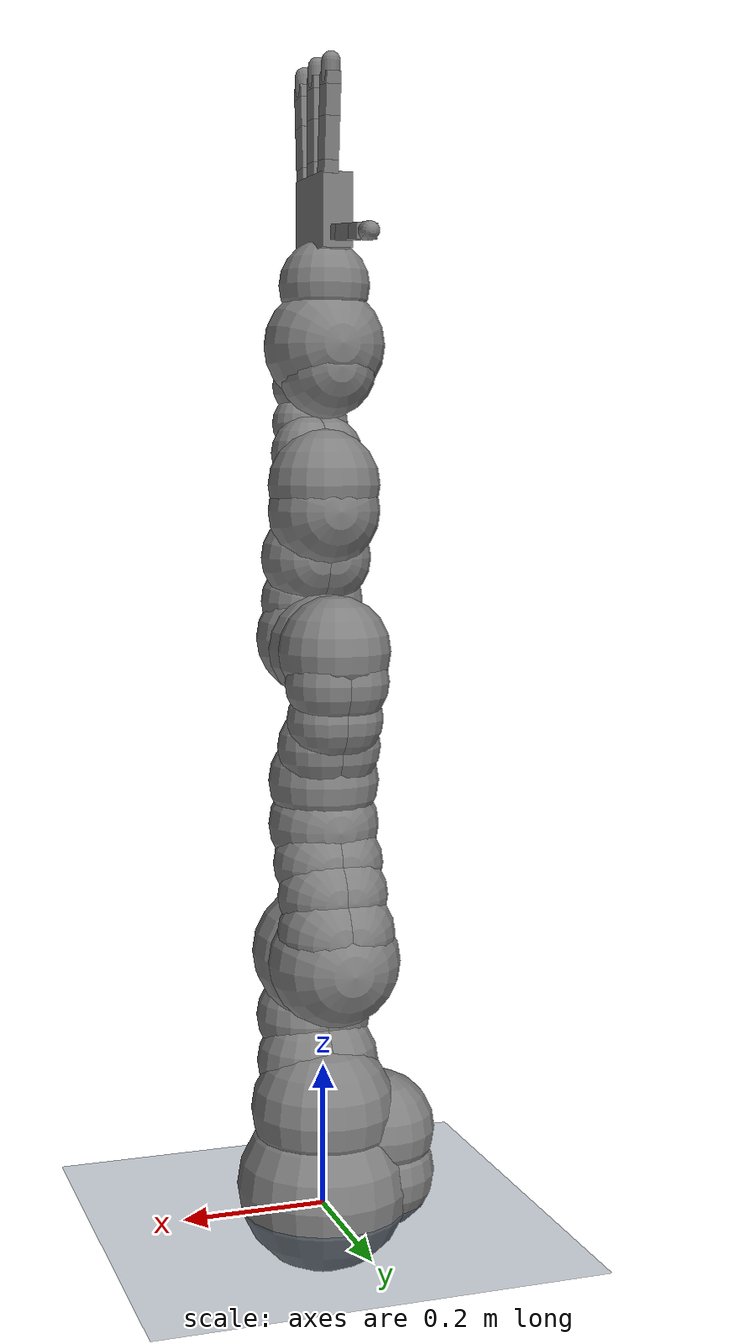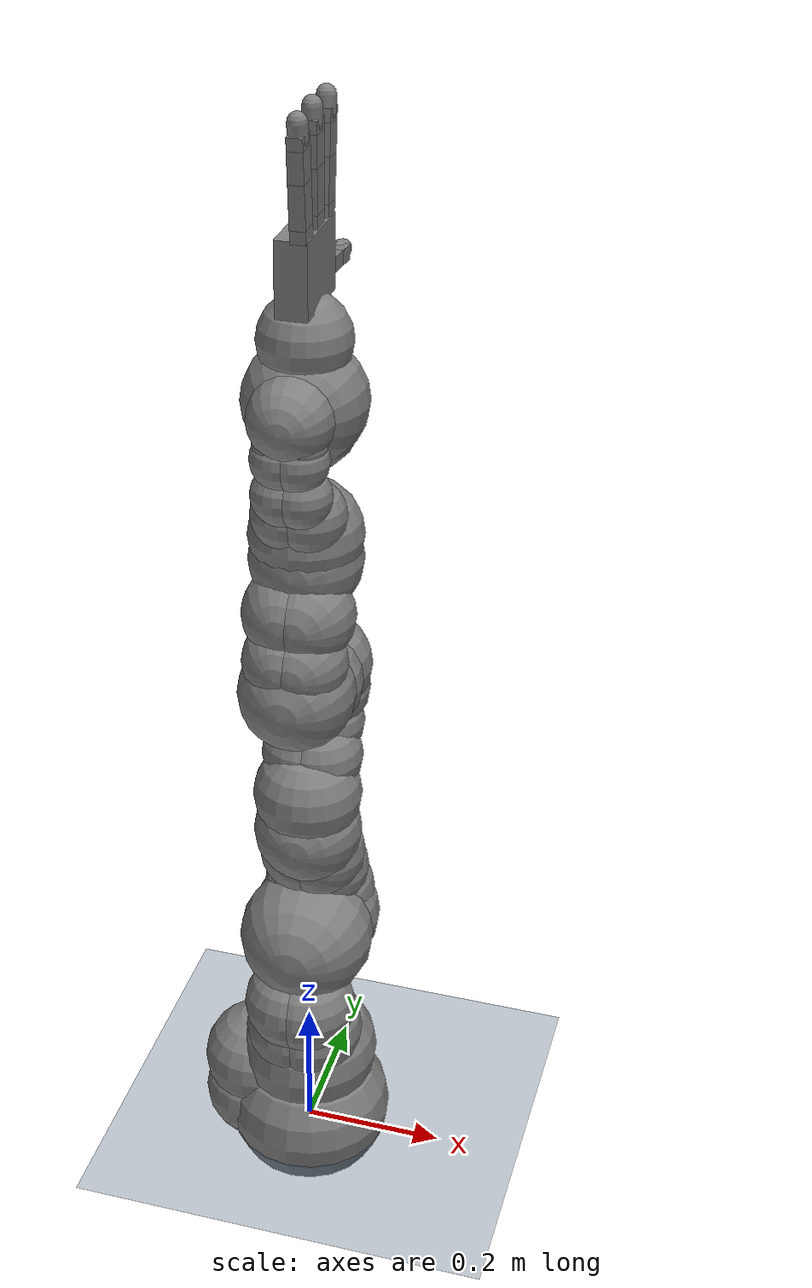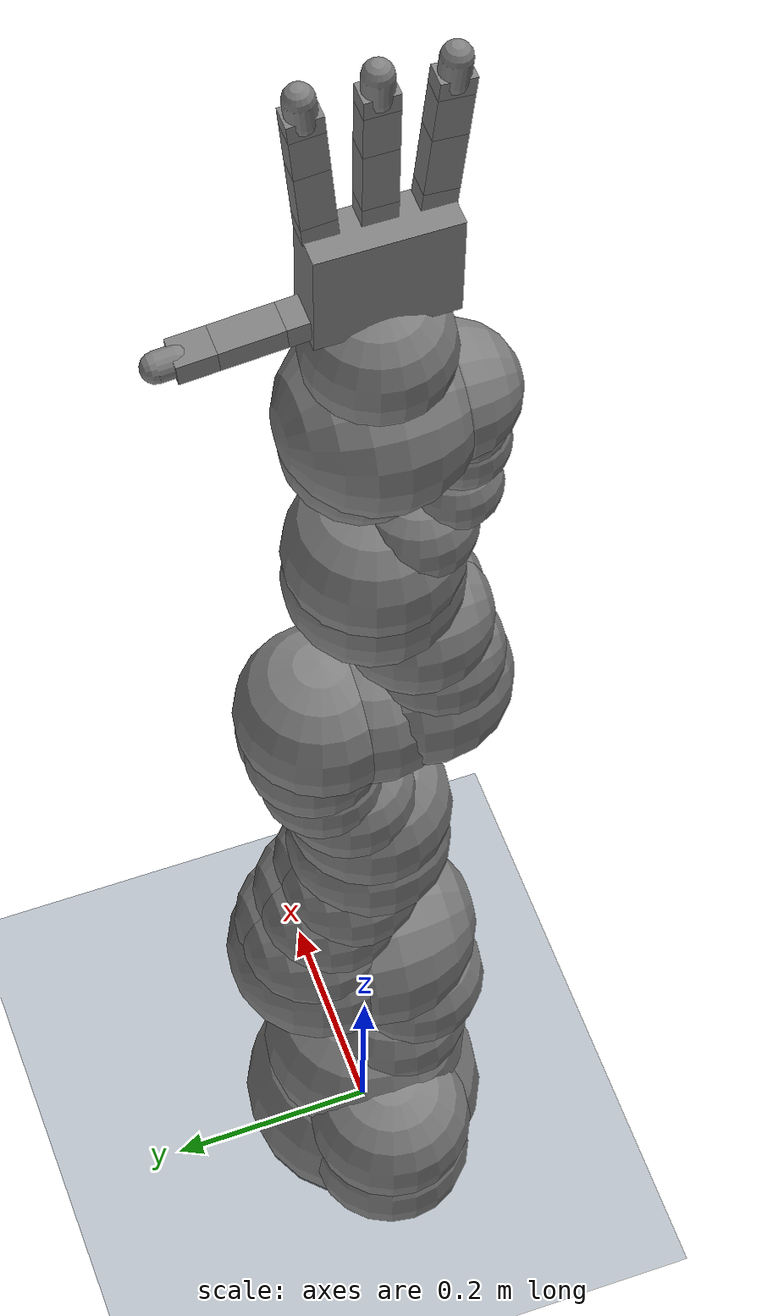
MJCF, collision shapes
<mujoco model="iiwa14_allegro_right_scene">
  <compiler angle="radian" autolimits="true"/>

  <option integrator="implicitfast" cone="elliptic" impratio="10"/>

  <statistic center="0.2 0 0.2" extent="1.0"/>

  <visual>
    <headlight diffuse="0.6 0.6 0.6" ambient="0.3 0.3 0.3" specular="0 0 0"/>
    <rgba haze="0.15 0.25 0.35 1"/>
    <global azimuth="-120" elevation="-20"/>
  </visual>

  <asset>
    <texture type="skybox" builtin="gradient" rgb1="0.3 0.5 0.7" rgb2="0 0 0" width="512" height="3072"/>
    <texture type="2d" name="groundplane" builtin="checker" mark="edge" rgb1="0.2 0.3 0.4" rgb2="0.1 0.2 0.3"
      markrgb="0.8 0.8 0.8" width="300" height="300"/>
    <material name="groundplane" texture="groundplane" texuniform="true" texrepeat="5 5" reflectance="0.2"/>

    <material class="iiwa" name="gray" rgba="0.4 0.4 0.4 1"/>
    <material class="iiwa" name="light_gray" rgba="0.6 0.6 0.6 1"/>
    <material class="iiwa" name="black" rgba="0 0 0 1"/>
    <material class="iiwa" name="orange" rgba="1 0.423529 0.0392157 1"/>

    <material name="allegro_black" rgba="0.2 0.2 0.2 1"/>
    <material name="allegro_white" rgba="0.9 0.9 0.9 1"/>

    <mesh file="kuka_iiwa_14/assets/link_0.obj"/>
    <mesh file="kuka_iiwa_14/assets/link_1.obj"/>
    <mesh file="kuka_iiwa_14/assets/link_2_orange.obj"/>
    <mesh file="kuka_iiwa_14/assets/link_2_grey.obj"/>
    <mesh file="kuka_iiwa_14/assets/link_3.obj"/>
    <mesh file="kuka_iiwa_14/assets/band.obj"/>
    <mesh file="kuka_iiwa_14/assets/kuka.obj"/>
    <mesh file="kuka_iiwa_14/assets/link_4_orange.obj"/>
    <mesh file="kuka_iiwa_14/assets/link_4_grey.obj"/>
    <mesh file="kuka_iiwa_14/assets/link_5.obj"/>
    <mesh file="kuka_iiwa_14/assets/link_6_orange.obj"/>
    <mesh file="kuka_iiwa_14/assets/link_6_grey.obj"/>
    <mesh file="kuka_iiwa_14/assets/link_7.obj"/>

    <mesh file="wonik_allegro/assets/base_link.stl"/>
    <mesh file="wonik_allegro/assets/link_0.0.stl"/>
    <mesh file="wonik_allegro/assets/link_1.0.stl"/>
    <mesh file="wonik_allegro/assets/link_2.0.stl"/>
    <mesh file="wonik_allegro/assets/link_3.0.stl"/>
    <mesh file="wonik_allegro/assets/link_3.0_tip.stl"/>
    <mesh file="wonik_allegro/assets/link_12.0_right.stl"/>
    <mesh file="wonik_allegro/assets/link_13.0.stl"/>
    <mesh file="wonik_allegro/assets/link_14.0.stl"/>
    <mesh file="wonik_allegro/assets/link_15.0.stl"/>
    <mesh file="wonik_allegro/assets/link_15.0_tip.stl"/>
  </asset>

  <default>
    <default class="iiwa">
      <material specular="0.5" shininess="0.25"/>
      <joint axis="0 0 1"/>
      <general gaintype="fixed" biastype="affine" gainprm="2000" biasprm="0 -2000 -200"/>
      <default class="joint1">
        <joint range="-2.96706 2.96706"/>
        <general ctrlrange="-2.96706 2.96706"/>
        <default class="joint2">
          <joint range="-2.0944 2.0944"/>
          <general ctrlrange="-2.0944 2.0944"/>
        </default>
      </default>
      <default class="joint3">
        <joint range="-3.05433 3.05433"/>
        <general ctrlrange="-3.05433 3.05433"/>
      </default>
      <default class="visual">
        <geom type="mesh" contype="0" conaffinity="0" group="2" material="gray"/>
      </default>
      <default class="collision">
        <geom group="3"/>
      </default>
      <site size="0.001" rgba="1 0 0 1" group="4"/>
    </default>

    <default class="allegro_right">
      <joint axis="0 1 0" damping=".1"/>
      <position kp="1"/>
      <geom density="800"/>

      <default class="allegro_visual">
        <geom type="mesh" contype="0" conaffinity="0" group="2" material="allegro_black"/>
        <default class="palm_visual">
          <geom mesh="base_link"/>
        </default>
        <default class="base_visual">
          <geom mesh="link_0.0"/>
        </default>
        <default class="proximal_visual">
          <geom mesh="link_1.0"/>
        </default>
        <default class="medial_visual">
          <geom mesh="link_2.0"/>
        </default>
        <default class="distal_visual">
          <geom mesh="link_3.0"/>
        </default>
        <default class="fingertip_visual">
          <geom pos="0 0 0.0267" material="allegro_white" mesh="link_3.0_tip"/>
        </default>
        <default class="thumbtip_visual">
          <geom pos="0 0 0.0423" material="allegro_white" mesh="link_15.0_tip"/>
        </default>
      </default>

      <default class="allegro_collision">
        <geom group="3" type="box" mass="0"/>
        <default class="palm_collision">
          <geom size="0.0204 0.0565 0.0475" pos="-0.0093 0 -0.0475"/>
        </default>
        <default class="base_collision">
          <geom size="0.0098 0.01375 0.0082" pos="0 0 0.0082"/>
          <default class="thumb_base_collision">
            <geom size="0.0179 0.017 0.02275" pos="-0.0179 0.009 0.0145"/>
          </default>
        </default>
        <default class="proximal_collision">
          <geom size="0.0098 0.01375 0.027" pos="0 0 0.027"/>
          <default class="thumb_proximal_collision">
            <geom size="0.0098 0.01375 0.00885" pos="0 0 0.00885"/>
          </default>
        </default>
        <default class="medial_collision">
          <geom size="0.0098 0.01375 0.0192" pos="0 0 0.0192"/>
          <default class="thumb_medial_collision">
            <geom size="0.0098 0.01375 0.0257" pos="0 0 0.0257"/>
          </default>
        </default>
        <default class="distal_collision">
          <geom size="0.0098 0.01375 0.008" pos="0 0 0.008"/>
          <default class="thumb_distal_collision">
            <geom size="0.0098 0.01375 0.0157" pos="0 0 0.0157"/>
          </default>
        </default>
        <default class="fingertip_collision">
          <geom type="capsule" size="0.012 0.01" pos="0 0 0.019"/>
          <default class="thumbtip_collision">
            <geom type="capsule" size="0.012 0.008" pos="0 0 0.035"/>
          </default>
        </default>
      </default>

      <default class="base">
        <joint axis="0 0 1" range="-0.47 0.47"/>
        <position ctrlrange="-0.47 0.47"/>
      </default>
      <default class="proximal">
        <joint range="-0.196 1.61"/>
        <position ctrlrange="-0.196 1.61"/>
      </default>
      <default class="medial">
        <joint range="-0.174 1.709"/>
        <position ctrlrange="-0.174 1.709"/>
      </default>
      <default class="distal">
        <joint range="-0.227 1.618"/>
        <position ctrlrange="-0.227 1.618"/>
      </default>
      <default class="thumb_base">
        <joint axis="-1 0 0" range="0.263 1.396"/>
        <position ctrlrange="0.263 1.396"/>
      </default>
      <default class="thumb_proximal">
        <joint axis="0 0 1" range="-0.105 1.163"/>
        <position ctrlrange="-0.105 1.163"/>
      </default>
      <default class="thumb_medial">
        <joint range="-0.189 1.644"/>
        <position ctrlrange="-0.189 1.644"/>
      </default>
      <default class="thumb_distal">
        <joint range="-0.162 1.719"/>
        <position ctrlrange="-0.162 1.719"/>
      </default>
    </default>
  </default>

  <worldbody>
    <light pos="0 0 1.5" dir="0 0 -1" directional="true"/>
    <geom name="floor" size="0 0 0.05" type="plane" material="groundplane"/>

    <light name="top" pos="0 0 2" mode="trackcom"/>
    <body name="base" childclass="iiwa">
      <inertial mass="5" pos="-0.1 0 0.07" diaginertia="0.05 0.06 0.03"/>
      <geom class="visual" mesh="link_0"/>
      <geom class="collision" size="0.12" pos="0 0 0.03"/>
      <geom class="collision" size="0.08" pos="-0.08 0 0.103"/>
      <geom class="collision" size="0.08" pos="-0.08 0 0.04"/>
      <geom class="collision" size="0.1" pos="0 0 0.14"/>
      <body name="link1" pos="0 0 0.1575">
        <inertial mass="5.76" pos="0 -0.03 0.12" diaginertia="0.0333 0.033 0.0123"/>
        <joint name="joint1" class="joint1"/>
        <geom class="visual" mesh="link_1"/>
        <geom class="collision" size="0.08" pos="0 0 -0.0005"/>
        <geom class="collision" size="0.075" pos="0.01 -0.025 0.0425"/>
        <geom class="collision" size="0.075" pos="-0.01 -0.025 0.0425"/>
        <geom class="collision" size="0.07" pos="0.01 -0.045 0.1025"/>
        <geom class="collision" size="0.07" pos="-0.01 -0.045 0.1025"/>
        <body name="link2" pos="0 0 0.2025" quat="0 0 1 1">
          <inertial mass="6.35" pos="0.0003 0.059 0.042" diaginertia="0.0305 0.0304 0.011" quat="0 0 1 1"/>
          <joint name="joint2" class="joint2"/>
          <geom class="visual" material="orange" mesh="link_2_orange"/>
          <geom class="visual" mesh="link_2_grey"/>
          <geom class="collision" size="0.095" pos="0 0 -0.01"/>
          <geom class="collision" size="0.09" pos="0 0 0.045"/>
          <geom class="collision" size="0.07" pos="-0.01 0.04 0.054"/>
          <geom class="collision" size="0.065" pos="-0.01 0.09 0.04"/>
          <geom class="collision" size="0.065" pos="-0.01 0.13 0.02"/>
          <geom class="collision" size="0.07" pos="0.01 0.04 0.054"/>
          <geom class="collision" size="0.065" pos="0.01 0.09 0.04"/>
          <geom class="collision" size="0.065" pos="0.01 0.13 0.02"/>
          <geom class="collision" size="0.075" pos="0 0.18 0"/>
          <body name="link3" pos="0 0.2045 0" quat="0 0 1 1">
            <inertial mass="3.5" pos="0 0.03 0.13" diaginertia="0.025 0.0238 0.0076"/>
            <joint name="joint3" class="joint1"/>
            <geom class="visual" mesh="link_3"/>
            <geom class="visual" material="light_gray" mesh="band"/>
            <geom class="visual" material="black" mesh="kuka"/>
            <geom class="collision" size="0.075" pos="0 0 0.0355"/>
            <geom class="collision" size="0.06" pos="0.01 0.023 0.0855"/>
            <geom class="collision" size="0.055" pos="0.01 0.048 0.1255"/>
            <geom class="collision" size="0.06" pos="0.01 0.056 0.1755"/>
            <geom class="collision" size="0.06" pos="-0.01 0.023 0.0855"/>
            <geom class="collision" size="0.055" pos="-0.01 0.048 0.1255"/>
            <geom class="collision" size="0.06" pos="-0.01 0.056 0.1755"/>
            <geom class="collision" size="0.075" pos="0 0.045 0.2155"/>
            <geom class="collision" size="0.075" pos="0 0 0.2155"/>
            <body name="link4" pos="0 0 0.2155" quat="1 1 0 0">
              <inertial mass="3.5" pos="0 0.067 0.034" diaginertia="0.017 0.0164 0.006" quat="1 1 0 0"/>
              <joint name="joint4" class="joint2"/>
              <geom class="visual" material="orange" mesh="link_4_orange"/>
              <geom class="visual" mesh="link_4_grey"/>
              <geom class="collision" size="0.078" pos="0 0.01 0.046"/>
              <geom class="collision" size="0.06" pos="0.01 0.06 0.052"/>
              <geom class="collision" size="0.065" pos="0.01 0.12 0.034"/>
              <geom class="collision" size="0.06" pos="-0.01 0.06 0.052"/>
              <geom class="collision" size="0.065" pos="-0.01 0.12 0.034"/>
              <geom class="collision" size="0.075" pos="0 0.184 0"/>
              <body name="link5" pos="0 0.1845 0" quat="0 0 1 1">
                <inertial mass="3.5" pos="0.0001 0.021 0.076" diaginertia="0.01 0.0087 0.00449"/>
                <joint name="joint5" class="joint1"/>
                <geom class="visual" mesh="link_5"/>
                <geom class="visual" material="light_gray" mesh="band"/>
                <geom class="visual" material="black" mesh="kuka"/>
                <geom class="collision" size="0.075" pos="0 0 0.0335"/>
                <geom class="collision" size="0.05" pos="-0.012 0.031 0.0755"/>
                <geom class="collision" size="0.05" pos="0.012 0.031 0.0755"/>
                <geom class="collision" size="0.04" pos="-0.012 0.06 0.1155"/>
                <geom class="collision" size="0.04" pos="0.012 0.06 0.1155"/>
                <geom class="collision" size="0.04" pos="-0.01 0.065 0.1655"/>
                <geom class="collision" size="0.04" pos="0.01 0.065 0.1655"/>
                <geom class="collision" size="0.035" pos="-0.012 0.065 0.1855"/>
                <geom class="collision" size="0.035" pos="0.012 0.065 0.1855"/>
                <body name="link6" pos="0 0 0.2155" quat="1 1 0 0">
                  <inertial mass="1.8" pos="0 0.0006 0.0004" diaginertia="0.0049 0.0047 0.0036" quat="1 1 0 0"/>
                  <joint name="joint6" class="joint2"/>
                  <geom class="visual" material="orange" mesh="link_6_orange"/>
                  <geom class="visual" mesh="link_6_grey"/>
                  <geom class="collision" size="0.055" pos="0 0 -0.059"/>
                  <geom class="collision" size="0.065" pos="0 -0.03 0.011"/>
                  <geom class="collision" size="0.08"/>
                  <body name="link7" pos="0 0.077 0" quat="0 0 1 1">
                    <inertial mass="1.2" pos="0 0 0.02" diaginertia="0.001 0.001 0.001"/>
                    <joint name="joint7" class="joint3"/>
                    <geom class="visual" mesh="link_7"/>
                    <geom class="collision" size="0.06" pos="0 0 0.001"/>
                    <site pos="0 0 0.045" name="attachment_site"/>
                    <body name="allegro_mount" pos="0.01 0 0.14" quat="0 1 0 1">
                      <body name="palm" quat="0 1 0 1" childclass="allegro_right">
                        <geom class="palm_visual" mesh="base_link"/>
                        <geom class="palm_collision"/>
                        <body name="ff_base" pos="0 0.0435 -0.001542" quat="0.999048 -0.0436194 0 0">
                          <joint name="ffj0" class="base"/>
                          <geom class="base_visual"/>
                          <geom class="base_collision"/>
                          <body name="ff_proximal" pos="0 0 0.0164">
                            <joint name="ffj1" class="proximal"/>
                            <geom class="proximal_visual"/>
                            <geom class="proximal_collision"/>
                            <body name="ff_medial" pos="0 0 0.054">
                              <joint name="ffj2" class="medial"/>
                              <geom class="medial_visual"/>
                              <geom class="medial_collision"/>
                              <body name="ff_distal" pos="0 0 0.0384">
                                <joint name="ffj3" class="distal"/>
                                <geom class="distal_visual"/>
                                <geom class="distal_collision"/>
                                <body name="ff_tip">
                                  <geom class="fingertip_visual"/>
                                  <geom class="fingertip_collision"/>
                                </body>
                              </body>
                            </body>
                          </body>
                        </body>
                        <body name="mf_base" pos="0 0 0.0007">
                          <joint name="mfj0" class="base"/>
                          <geom class="base_visual"/>
                          <geom class="base_collision"/>
                          <body name="mf_proximal" pos="0 0 0.0164">
                            <joint name="mfj1" class="proximal"/>
                            <geom class="proximal_visual"/>
                            <geom class="proximal_collision"/>
                            <body name="mf_medial" pos="0 0 0.054">
                              <joint name="mfj2" class="medial"/>
                              <geom class="medial_visual"/>
                              <geom class="medial_collision"/>
                              <body name="mf_distal" pos="0 0 0.0384">
                                <joint name="mfj3" class="distal"/>
                                <geom class="distal_visual"/>
                                <geom class="distal_collision"/>
                                <body name="mf_tip">
                                  <geom class="fingertip_visual"/>
                                  <geom class="fingertip_collision"/>
                                </body>
                              </body>
                            </body>
                          </body>
                        </body>
                        <body name="rf_base" pos="0 -0.0435 -0.001542" quat="0.999048 0.0436194 0 0">
                          <joint name="rfj0" class="base"/>
                          <geom class="base_visual"/>
                          <geom class="base_collision"/>
                          <body name="rf_proximal" pos="0 0 0.0164">
                            <joint name="rfj1" class="proximal"/>
                            <geom class="proximal_visual"/>
                            <geom class="proximal_collision"/>
                            <body name="rf_medial" pos="0 0 0.054">
                              <joint name="rfj2" class="medial"/>
                              <geom class="medial_visual"/>
                              <geom class="medial_collision"/>
                              <body name="rf_distal" pos="0 0 0.0384">
                                <joint name="rfj3" class="distal"/>
                                <geom class="distal_visual"/>
                                <geom class="distal_collision"/>
                                <body name="rf_tip">
                                  <geom class="fingertip_visual"/>
                                  <geom class="fingertip_collision"/>
                                </body>
                              </body>
                            </body>
                          </body>
                        </body>
                        <body name="th_base" pos="-0.0182 0.019333 -0.045987" quat="0.477714 -0.521334 -0.521334 -0.477714">
                          <joint name="thj0" class="thumb_base"/>
                          <geom class="allegro_visual" mesh="link_12.0_right"/>
                          <geom class="thumb_base_collision"/>
                          <body name="th_proximal" pos="-0.027 0.005 0.0399">
                            <joint name="thj1" class="thumb_proximal"/>
                            <geom class="allegro_visual" mesh="link_13.0"/>
                            <geom class="thumb_proximal_collision"/>
                            <body name="th_medial" pos="0 0 0.0177">
                              <joint name="thj2" class="thumb_medial"/>
                              <geom class="allegro_visual" mesh="link_14.0"/>
                              <geom class="thumb_medial_collision"/>
                              <body name="th_distal" pos="0 0 0.0514">
                                <joint name="thj3" class="thumb_distal"/>
                                <geom class="allegro_visual" mesh="link_15.0"/>
                                <geom class="thumb_distal_collision"/>
                                <body name="th_tip">
                                  <geom class="thumbtip_visual"/>
                                  <geom class="thumbtip_collision"/>
                                </body>
                              </body>
                            </body>
                          </body>
                        </body>
                      </body>
                    </body>
                  </body>
                </body>
              </body>
            </body>
          </body>
        </body>
      </body>
    </body>
  </worldbody>

  <contact>
    <exclude body1="base" body2="link1"/>
    <exclude body1="base" body2="link2"/>
    <exclude body1="base" body2="link3"/>
    <exclude body1="link1" body2="link3"/>
    <exclude body1="link3" body2="link5"/>
    <exclude body1="link4" body2="link7"/>
    <exclude body1="link5" body2="link7"/>
    <exclude body1="link7" body2="palm"/>

    <exclude body1="palm" body2="ff_base"/>
    <exclude body1="palm" body2="mf_base"/>
    <exclude body1="palm" body2="rf_base"/>
    <exclude body1="palm" body2="th_base"/>
    <exclude body1="palm" body2="th_proximal"/>
  </contact>

  <actuator>
    <general name="actuator1" joint="joint1" class="joint1"/>
    <general name="actuator2" joint="joint2" class="joint2"/>
    <general name="actuator3" joint="joint3" class="joint1"/>
    <general name="actuator4" joint="joint4" class="joint2"/>
    <general name="actuator5" joint="joint5" class="joint1"/>
    <general name="actuator6" joint="joint6" class="joint2"/>
    <general name="actuator7" joint="joint7" class="joint3"/>

    <position name="ffa0" joint="ffj0" class="base"/>
    <position name="ffa1" joint="ffj1" class="proximal"/>
    <position name="ffa2" joint="ffj2" class="medial"/>
    <position name="ffa3" joint="ffj3" class="distal"/>
    <position name="mfa0" joint="mfj0" class="base"/>
    <position name="mfa1" joint="mfj1" class="proximal"/>
    <position name="mfa2" joint="mfj2" class="medial"/>
    <position name="mfa3" joint="mfj3" class="distal"/>
    <position name="rfa0" joint="rfj0" class="base"/>
    <position name="rfa1" joint="rfj1" class="proximal"/>
    <position name="rfa2" joint="rfj2" class="medial"/>
    <position name="rfa3" joint="rfj3" class="distal"/>
    <position name="tha0" joint="thj0" class="thumb_base"/>
    <position name="tha1" joint="thj1" class="thumb_proximal"/>
    <position name="tha2" joint="thj2" class="thumb_medial"/>
    <position name="tha3" joint="thj3" class="thumb_distal"/>
  </actuator>
</mujoco>
